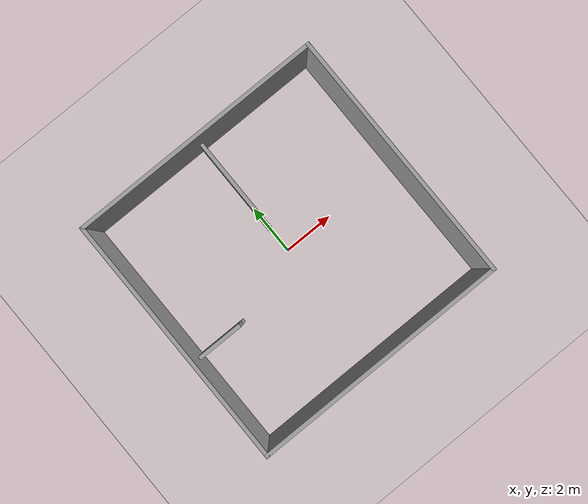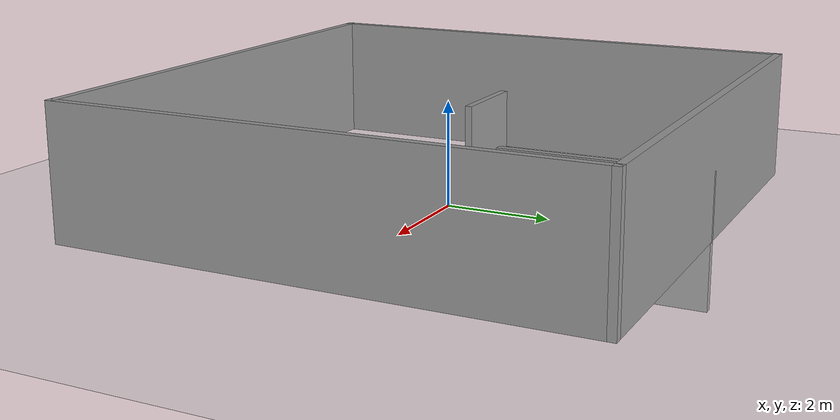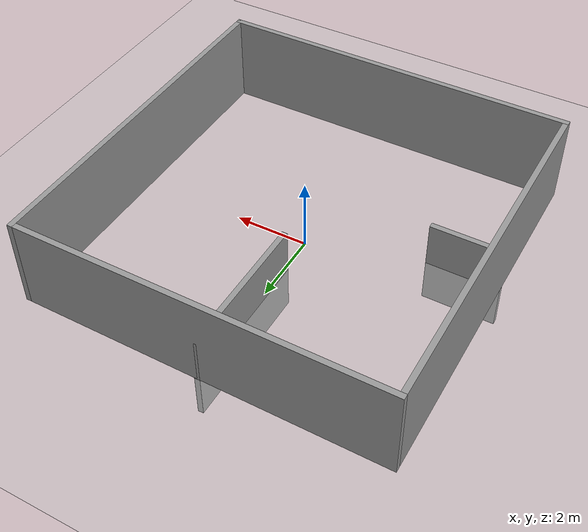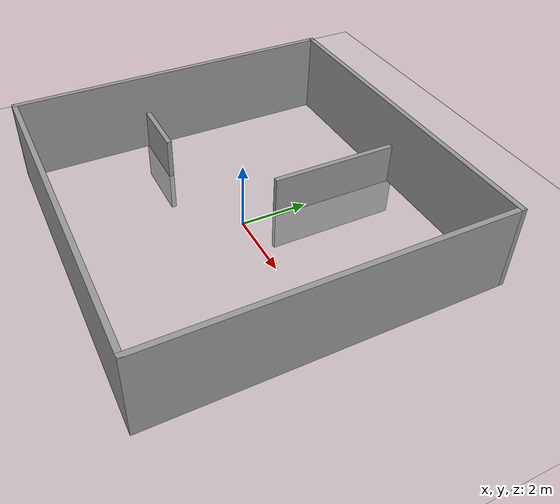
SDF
<sdf version="1.7">
 <world name="default">
  <plugin name="gazebo_occupancy_map" filename="libgazebo_2Dmap_plugin.so">
   <map_resolution>0.05</map_resolution>
   <map_height>0.3</map_height>
   <map_size_x>10</map_size_x>
   <map_size_y>10</map_size_y>
   <init_robot_x>0</init_robot_x>
   <init_robot_y>0</init_robot_y>
  </plugin>
  <light name="sun" type="directional">
   <pose>0 0 10 0 -0 0</pose>
   <diffuse>0.8 0.8 0.8 1</diffuse>
   <specular>0.2 0.2 0.2 1</specular>
   <attenuation>
    <range>1000</range>
    <constant>0.9</constant>
    <linear>0.01</linear>
    <quadratic>0.001</quadratic>
   </attenuation>
   <direction>-0.5 0.1 -0.9</direction>
   <spot><inner_angle>0</inner_angle><outer_angle>0</outer_angle><falloff>0</falloff></spot>
  </light>
  <model name="ground_plane">
   <static>1</static>
   <link name="link">
    <collision name="collision">
     <geometry><plane><normal>0 0 1</normal><size>100 100</size></plane></geometry>
     <surface>
      <contact><collide_bitmask>65535</collide_bitmask></contact>
      <friction><ode><mu>100</mu><mu2>50</mu2></ode></friction>
     </surface>
    </collision>
    <visual name="visual">
     <cast_shadows>0</cast_shadows>
     <geometry><plane><normal>0 0 1</normal><size>100 100</size></plane></geometry>
     <material>
      <script><uri>file://media/materials/scripts/gazebo.material</uri><name>Gazebo/Grey</name></script>
     </material>
    </visual>
   </link>
  </model>
  <gravity>0 0 -9.8</gravity>
  <magnetic_field>6e-06 2.3e-05 -4.2e-05</magnetic_field>
  <atmosphere type="adiabatic"/>
  <physics type="ode">
   <max_step_size>0.001</max_step_size>
   <real_time_factor>1</real_time_factor>
   <real_time_update_rate>1000</real_time_update_rate>
  </physics>
  <scene><ambient>0.4 0.4 0.4 1</ambient><background>0.7 0.7 0.7 1</background><shadows>1</shadows></scene>
  <spherical_coordinates>
   <surface_model>EARTH_WGS84</surface_model>
   <latitude_deg>0</latitude_deg>
   <longitude_deg>0</longitude_deg>
   <elevation>0</elevation>
   <heading_deg>0</heading_deg>
  </spherical_coordinates>
  <model name="bounded10">
   <link name="Wall_1">
    <collision name="Wall_1_Collision">
     <geometry><box><size>10 0.15 2.5</size></box></geometry>
     <pose>0 0 1.25 0 -0 0</pose>
    </collision>
    <visual name="Wall_1_Visual">
     <pose>0 0 1.25 0 -0 0</pose>
     <geometry><box><size>10 0.15 2.5</size></box></geometry>
     <material>
      <script><uri>file://media/materials/scripts/gazebo.material</uri><name>Gazebo/Grey</name></script>
      <ambient>1 1 1 1</ambient>
     </material>
     <meta><layer>0</layer></meta>
    </visual>
    <pose>-4.925 -0 0 0 -0 -1.5708</pose>
   </link>
   <link name="Wall_2">
    <collision name="Wall_2_Collision">
     <geometry><box><size>10 0.15 2.5</size></box></geometry>
     <pose>0 0 1.25 0 -0 0</pose>
    </collision>
    <visual name="Wall_2_Visual">
     <pose>0 0 1.25 0 -0 0</pose>
     <geometry><box><size>10 0.15 2.5</size></box></geometry>
     <material>
      <script><uri>file://media/materials/scripts/gazebo.material</uri><name>Gazebo/Grey</name></script>
      <ambient>1 1 1 1</ambient>
     </material>
     <meta><layer>0</layer></meta>
    </visual>
    <pose>0 -4.925 0 0 -0 0</pose>
   </link>
   <link name="Wall_3">
    <collision name="Wall_3_Collision">
     <geometry><box><size>10 0.15 2.5</size></box></geometry>
     <pose>0 0 1.25 0 -0 0</pose>
    </collision>
    <visual name="Wall_3_Visual">
     <pose>0 0 1.25 0 -0 0</pose>
     <geometry><box><size>10 0.15 2.5</size></box></geometry>
     <material>
      <script><uri>file://media/materials/scripts/gazebo.material</uri><name>Gazebo/Grey</name></script>
      <ambient>1 1 1 1</ambient>
     </material>
     <meta><layer>0</layer></meta>
    </visual>
    <pose>4.925 -0 0 0 -0 1.5708</pose>
   </link>
   <link name="Wall_4">
    <collision name="Wall_4_Collision">
     <geometry><box><size>10 0.15 2.5</size></box></geometry>
     <pose>0 0 1.25 0 -0 0</pose>
    </collision>
    <visual name="Wall_4_Visual">
     <pose>0 0 1.25 0 -0 0</pose>
     <geometry><box><size>10 0.15 2.5</size></box></geometry>
     <material>
      <script><uri>file://media/materials/scripts/gazebo.material</uri><name>Gazebo/Grey</name></script>
      <ambient>1 1 1 1</ambient>
     </material>
     <meta><layer>0</layer></meta>
    </visual>
    <pose>0 4.925 0 0 -0 3.14159</pose>
   </link>
   <static>1</static>
  </model>
  <model name="wall2">
   <link name="wall">
    <collision name="wall_collision"><geometry><box><size>2 0.15 2.5</size></box></geometry></collision>
    <visual name="wall_visual">
     <geometry><box><size>2 0.15 2.5</size></box></geometry>
     <material>
      <script><uri>file://media/materials/scripts/gazebo.material</uri><name>Gazebo/Grey</name></script>
      <ambient>1 1 1 1</ambient>
     </material>
     <meta><layer>0</layer></meta>
    </visual>
   </link>
   <static>1</static>
   <pose>-4 -1 0 0 -0 0</pose>
  </model>
  <model name="wall4">
   <link name="wall">
    <collision name="wall_collision"><geometry><box><size>4 0.15 2.5</size></box></geometry></collision>
    <visual name="wall_visual">
     <geometry><box><size>4 0.15 2.5</size></box></geometry>
     <material>
      <script><uri>file://media/materials/scripts/gazebo.material</uri><name>Gazebo/Grey</name></script>
      <ambient>1 1 1 1</ambient>
     </material>
     <meta><layer>0</layer></meta>
    </visual>
   </link>
   <static>1</static>
   <pose>0 3 0 0 -0 1.5697</pose>
  </model>
 </world>
</sdf>
